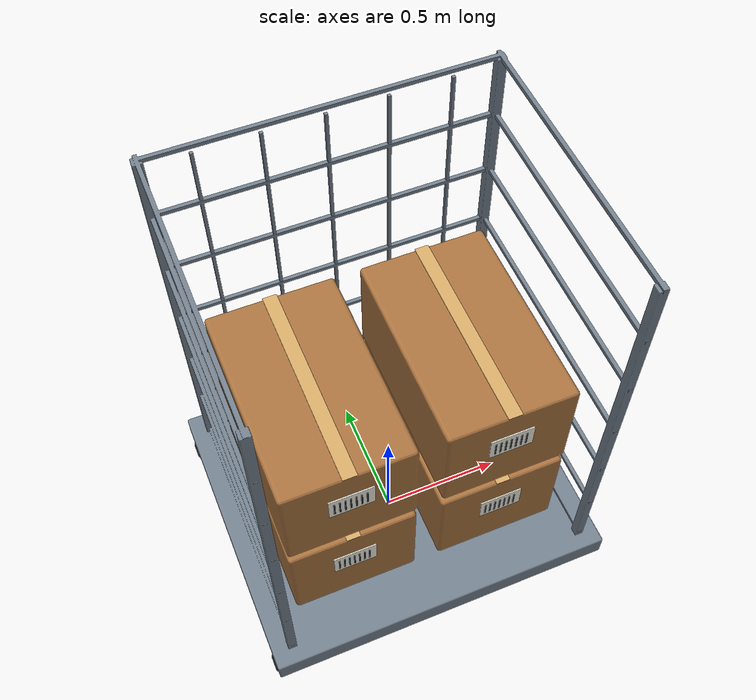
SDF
<?xml version='1.0' encoding='utf-8'?>
<sdf version="1.10">
  <model name="roll_cage">
    <static>true</static>
    <link name="body">
      <collision name="envelope">
        <pose>0 0 0.95 0 0 0</pose>
        <geometry>
          <box>
            <size>1.5 1.3 1.9</size>
          </box>
        </geometry>
      </collision>
      <visual name="steel">
        <geometry>
          <mesh>
            <uri>model://roll_cage/meshes/steel.obj</uri>
          </mesh>
        </geometry>
        <material>
          <diffuse>0.44 0.49 0.54 1</diffuse>
          <ambient>0.308 0.34299999999999997 0.378 1</ambient>
          <specular>0.4 0.4 0.4 1</specular>
        </material>
      </visual>
      <visual name="dark">
        <geometry>
          <mesh>
            <uri>model://roll_cage/meshes/dark.obj</uri>
          </mesh>
        </geometry>
        <material>
          <diffuse>0.045 0.06 0.077 1</diffuse>
          <ambient>0.0315 0.041999999999999996 0.053899999999999997 1</ambient>
          <specular>0.1 0.1 0.1 1</specular>
        </material>
      </visual>
      <visual name="cardboard">
        <geometry>
          <mesh>
            <uri>model://roll_cage/meshes/cardboard.obj</uri>
          </mesh>
        </geometry>
        <material>
          <diffuse>0.65 0.44 0.24 1</diffuse>
          <ambient>0.45499999999999996 0.308 0.16799999999999998 1</ambient>
          <specular>0.1 0.1 0.1 1</specular>
        </material>
      </visual>
      <visual name="tape">
        <geometry>
          <mesh>
            <uri>model://roll_cage/meshes/tape.obj</uri>
          </mesh>
        </geometry>
        <material>
          <diffuse>0.82 0.65 0.4 1</diffuse>
          <ambient>0.574 0.45499999999999996 0.27999999999999997 1</ambient>
          <specular>0.1 0.1 0.1 1</specular>
        </material>
      </visual>
      <visual name="label">
        <geometry>
          <mesh>
            <uri>model://roll_cage/meshes/label.obj</uri>
          </mesh>
        </geometry>
        <material>
          <diffuse>0.92 0.92 0.87 1</diffuse>
          <ambient>0.644 0.644 0.609 1</ambient>
          <specular>0.1 0.1 0.1 1</specular>
        </material>
      </visual>
    </link>
  </model>
</sdf>
